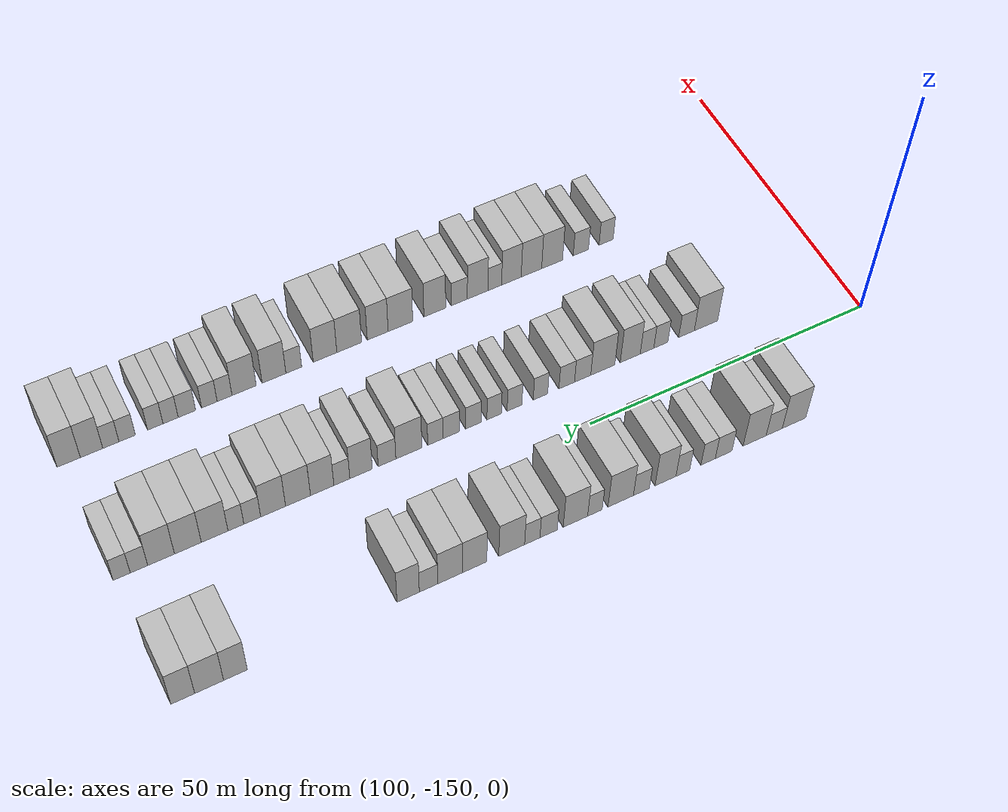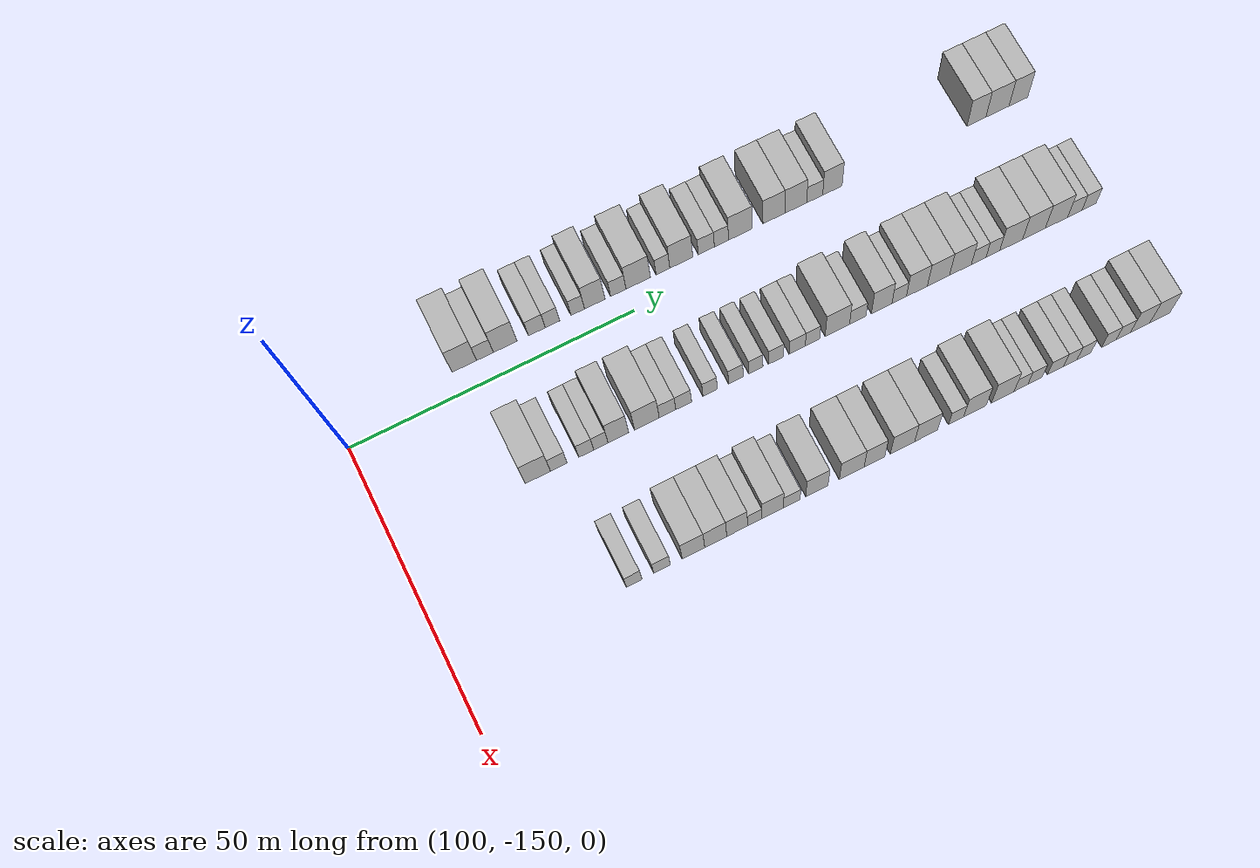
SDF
<sdf version="1.6">
 <world name="default">
  <model name="building_629">
   <static>1</static>
   <pose>91.0000 -128.2528 0 0.000000 0.000000 0.000000</pose>
   <link name="link">
    <pose>0 0 4.50 0 0 0</pose>
    <collision name="collision"><geometry><box><size>10.0000 4.3048 9.0000</size></box></geometry></collision>
    <visual name="visual">
     <cast_shadows>0</cast_shadows>
     <geometry><box><size>10.0000 4.3048 9.0000</size></box></geometry>
     <material>
      <script>
       <uri>model://HANNAS_wall/materials/scripts</uri>
       <uri>model://HANNAS_wall/materials/textures</uri>
       <name>vrc/HANNAS_wall</name>
      </script>
     </material>
    </visual>
   </link>
  </model>
  <model name="building_630">
   <static>1</static>
   <pose>91.0000 -124.6342 0 0.000000 0.000000 0.000000</pose>
   <link name="link">
    <pose>0 0 3.00 0 0 0</pose>
    <collision name="collision"><geometry><box><size>10.0000 2.9324 6.0000</size></box></geometry></collision>
    <visual name="visual">
     <cast_shadows>0</cast_shadows>
     <geometry><box><size>10.0000 2.9324 6.0000</size></box></geometry>
     <material>
      <script>
       <uri>model://HANNAS_wall/materials/scripts</uri>
       <uri>model://HANNAS_wall/materials/textures</uri>
       <name>vrc/HANNAS_wall</name>
      </script>
     </material>
    </visual>
   </link>
  </model>
  <model name="building_631">
   <static>1</static>
   <pose>91.0000 -121.0870 0 0.000000 0.000000 0.000000</pose>
   <link name="link">
    <pose>0 0 4.50 0 0 0</pose>
    <collision name="collision"><geometry><box><size>10.0000 4.1621 9.0000</size></box></geometry></collision>
    <visual name="visual">
     <cast_shadows>0</cast_shadows>
     <geometry><box><size>10.0000 4.1621 9.0000</size></box></geometry>
     <material>
      <script>
       <uri>model://HANNAS_wall/materials/scripts</uri>
       <uri>model://HANNAS_wall/materials/textures</uri>
       <name>vrc/HANNAS_wall</name>
      </script>
     </material>
    </visual>
   </link>
  </model>
  <model name="building_632">
   <static>1</static>
   <pose>91.0000 -115.5099 0 0.000000 0.000000 0.000000</pose>
   <link name="link">
    <pose>0 0 3.00 0 0 0</pose>
    <collision name="collision"><geometry><box><size>10.0000 2.9921 6.0000</size></box></geometry></collision>
    <visual name="visual">
     <cast_shadows>0</cast_shadows>
     <geometry><box><size>10.0000 2.9921 6.0000</size></box></geometry>
     <material>
      <script>
       <uri>model://HANNAS_wall/materials/scripts</uri>
       <uri>model://HANNAS_wall/materials/textures</uri>
       <name>vrc/HANNAS_wall</name>
      </script>
     </material>
    </visual>
   </link>
  </model>
  <model name="building_633">
   <static>1</static>
   <pose>91.0000 -112.7357 0 0.000000 0.000000 0.000000</pose>
   <link name="link">
    <pose>0 0 3.00 0 0 0</pose>
    <collision name="collision"><geometry><box><size>10.0000 2.5564 6.0000</size></box></geometry></collision>
    <visual name="visual">
     <cast_shadows>0</cast_shadows>
     <geometry><box><size>10.0000 2.5564 6.0000</size></box></geometry>
     <material>
      <script>
       <uri>model://HANNAS_wall/materials/scripts</uri>
       <uri>model://HANNAS_wall/materials/textures</uri>
       <name>vrc/HANNAS_wall</name>
      </script>
     </material>
    </visual>
   </link>
  </model>
  <model name="building_634">
   <static>1</static>
   <pose>91.0000 -108.2449 0 0.000000 0.000000 0.000000</pose>
   <link name="link">
    <pose>0 0 3.00 0 0 0</pose>
    <collision name="collision"><geometry><box><size>10.0000 2.4250 6.0000</size></box></geometry></collision>
    <visual name="visual">
     <cast_shadows>0</cast_shadows>
     <geometry><box><size>10.0000 2.4250 6.0000</size></box></geometry>
     <material>
      <script>
       <uri>model://HANNAS_wall/materials/scripts</uri>
       <uri>model://HANNAS_wall/materials/textures</uri>
       <name>vrc/HANNAS_wall</name>
      </script>
     </material>
    </visual>
   </link>
  </model>
  <model name="building_635">
   <static>1</static>
   <pose>91.0000 -105.1989 0 0.000000 0.000000 0.000000</pose>
   <link name="link">
    <pose>0 0 4.50 0 0 0</pose>
    <collision name="collision"><geometry><box><size>10.0000 3.6670 9.0000</size></box></geometry></collision>
    <visual name="visual">
     <cast_shadows>0</cast_shadows>
     <geometry><box><size>10.0000 3.6670 9.0000</size></box></geometry>
     <material>
      <script>
       <uri>model://HANNAS_wall/materials/scripts</uri>
       <uri>model://HANNAS_wall/materials/textures</uri>
       <name>vrc/HANNAS_wall</name>
      </script>
     </material>
    </visual>
   </link>
  </model>
  <model name="building_636">
   <static>1</static>
   <pose>91.0000 -100.9772 0 0.000000 0.000000 0.000000</pose>
   <link name="link">
    <pose>0 0 3.00 0 0 0</pose>
    <collision name="collision"><geometry><box><size>10.0000 2.7763 6.0000</size></box></geometry></collision>
    <visual name="visual">
     <cast_shadows>0</cast_shadows>
     <geometry><box><size>10.0000 2.7763 6.0000</size></box></geometry>
     <material>
      <script>
       <uri>model://HANNAS_wall/materials/scripts</uri>
       <uri>model://HANNAS_wall/materials/textures</uri>
       <name>vrc/HANNAS_wall</name>
      </script>
     </material>
    </visual>
   </link>
  </model>
  <model name="building_637">
   <static>1</static>
   <pose>91.0000 -97.3853 0 0.000000 0.000000 0.000000</pose>
   <link name="link">
    <pose>0 0 4.50 0 0 0</pose>
    <collision name="collision"><geometry><box><size>10.0000 4.4076 9.0000</size></box></geometry></collision>
    <visual name="visual">
     <cast_shadows>0</cast_shadows>
     <geometry><box><size>10.0000 4.4076 9.0000</size></box></geometry>
     <material>
      <script>
       <uri>model://HANNAS_wall/materials/scripts</uri>
       <uri>model://HANNAS_wall/materials/textures</uri>
       <name>vrc/HANNAS_wall</name>
      </script>
     </material>
    </visual>
   </link>
  </model>
  <model name="building_638">
   <static>1</static>
   <pose>91.0000 -92.9346 0 0.000000 0.000000 0.000000</pose>
   <link name="link">
    <pose>0 0 3.00 0 0 0</pose>
    <collision name="collision"><geometry><box><size>10.0000 2.4937 6.0000</size></box></geometry></collision>
    <visual name="visual">
     <cast_shadows>0</cast_shadows>
     <geometry><box><size>10.0000 2.4937 6.0000</size></box></geometry>
     <material>
      <script>
       <uri>model://HANNAS_wall/materials/scripts</uri>
       <uri>model://HANNAS_wall/materials/textures</uri>
       <name>vrc/HANNAS_wall</name>
      </script>
     </material>
    </visual>
   </link>
  </model>
  <model name="building_639">
   <static>1</static>
   <pose>91.0000 -89.5985 0 0.000000 0.000000 0.000000</pose>
   <link name="link">
    <pose>0 0 4.50 0 0 0</pose>
    <collision name="collision"><geometry><box><size>10.0000 4.1785 9.0000</size></box></geometry></collision>
    <visual name="visual">
     <cast_shadows>0</cast_shadows>
     <geometry><box><size>10.0000 4.1785 9.0000</size></box></geometry>
     <material>
      <script>
       <uri>model://HANNAS_wall/materials/scripts</uri>
       <uri>model://HANNAS_wall/materials/textures</uri>
       <name>vrc/HANNAS_wall</name>
      </script>
     </material>
    </visual>
   </link>
  </model>
  <model name="building_640">
   <static>1</static>
   <pose>91.0000 -85.0421 0 0.000000 0.000000 0.000000</pose>
   <link name="link">
    <pose>0 0 3.00 0 0 0</pose>
    <collision name="collision"><geometry><box><size>10.0000 2.9344 6.0000</size></box></geometry></collision>
    <visual name="visual">
     <cast_shadows>0</cast_shadows>
     <geometry><box><size>10.0000 2.9344 6.0000</size></box></geometry>
     <material>
      <script>
       <uri>model://HANNAS_wall/materials/scripts</uri>
       <uri>model://HANNAS_wall/materials/textures</uri>
       <name>vrc/HANNAS_wall</name>
      </script>
     </material>
    </visual>
   </link>
  </model>
  <model name="building_641">
   <static>1</static>
   <pose>91.0000 -82.2795 0 0.000000 0.000000 0.000000</pose>
   <link name="link">
    <pose>0 0 3.00 0 0 0</pose>
    <collision name="collision"><geometry><box><size>10.0000 2.5909 6.0000</size></box></geometry></collision>
    <visual name="visual">
     <cast_shadows>0</cast_shadows>
     <geometry><box><size>10.0000 2.5909 6.0000</size></box></geometry>
     <material>
      <script>
       <uri>model://HANNAS_wall/materials/scripts</uri>
       <uri>model://HANNAS_wall/materials/textures</uri>
       <name>vrc/HANNAS_wall</name>
      </script>
     </material>
    </visual>
   </link>
  </model>
  <model name="building_642">
   <static>1</static>
   <pose>91.0000 -78.8222 0 0.000000 0.000000 0.000000</pose>
   <link name="link">
    <pose>0 0 4.50 0 0 0</pose>
    <collision name="collision"><geometry><box><size>10.0000 4.3237 9.0000</size></box></geometry></collision>
    <visual name="visual">
     <cast_shadows>0</cast_shadows>
     <geometry><box><size>10.0000 4.3237 9.0000</size></box></geometry>
     <material>
      <script>
       <uri>model://HANNAS_wall/materials/scripts</uri>
       <uri>model://HANNAS_wall/materials/textures</uri>
       <name>vrc/HANNAS_wall</name>
      </script>
     </material>
    </visual>
   </link>
  </model>
  <model name="building_643">
   <static>1</static>
   <pose>91.0000 -72.6455 0 0.000000 0.000000 0.000000</pose>
   <link name="link">
    <pose>0 0 4.50 0 0 0</pose>
    <collision name="collision"><geometry><box><size>10.0000 4.0297 9.0000</size></box></geometry></collision>
    <visual name="visual">
     <cast_shadows>0</cast_shadows>
     <geometry><box><size>10.0000 4.0297 9.0000</size></box></geometry>
     <material>
      <script>
       <uri>model://HANNAS_wall/materials/scripts</uri>
       <uri>model://HANNAS_wall/materials/textures</uri>
       <name>vrc/HANNAS_wall</name>
      </script>
     </material>
    </visual>
   </link>
  </model>
  <model name="building_644">
   <static>1</static>
   <pose>91.0000 -68.5964 0 0.000000 0.000000 0.000000</pose>
   <link name="link">
    <pose>0 0 4.50 0 0 0</pose>
    <collision name="collision"><geometry><box><size>10.0000 4.0685 9.0000</size></box></geometry></collision>
    <visual name="visual">
     <cast_shadows>0</cast_shadows>
     <geometry><box><size>10.0000 4.0685 9.0000</size></box></geometry>
     <material>
      <script>
       <uri>model://HANNAS_wall/materials/scripts</uri>
       <uri>model://HANNAS_wall/materials/textures</uri>
       <name>vrc/HANNAS_wall</name>
      </script>
     </material>
    </visual>
   </link>
  </model>
  <model name="building_645">
   <static>1</static>
   <pose>91.0000 -65.0683 0 0.000000 0.000000 0.000000</pose>
   <link name="link">
    <pose>0 0 3.00 0 0 0</pose>
    <collision name="collision"><geometry><box><size>10.0000 2.9877 6.0000</size></box></geometry></collision>
    <visual name="visual">
     <cast_shadows>0</cast_shadows>
     <geometry><box><size>10.0000 2.9877 6.0000</size></box></geometry>
     <material>
      <script>
       <uri>model://HANNAS_wall/materials/scripts</uri>
       <uri>model://HANNAS_wall/materials/textures</uri>
       <name>vrc/HANNAS_wall</name>
      </script>
     </material>
    </visual>
   </link>
  </model>
  <model name="building_646">
   <static>1</static>
   <pose>91.0000 -61.7629 0 0.000000 0.000000 0.000000</pose>
   <link name="link">
    <pose>0 0 4.50 0 0 0</pose>
    <collision name="collision"><geometry><box><size>10.0000 3.6233 9.0000</size></box></geometry></collision>
    <visual name="visual">
     <cast_shadows>0</cast_shadows>
     <geometry><box><size>10.0000 3.6233 9.0000</size></box></geometry>
     <material>
      <script>
       <uri>model://HANNAS_wall/materials/scripts</uri>
       <uri>model://HANNAS_wall/materials/textures</uri>
       <name>vrc/HANNAS_wall</name>
      </script>
     </material>
    </visual>
   </link>
  </model>
  <model name="building_647">
   <static>1</static>
   <pose>91.0000 -34.4784 0 0.000000 0.000000 0.000000</pose>
   <link name="link">
    <pose>0 0 4.50 0 0 0</pose>
    <collision name="collision"><geometry><box><size>10.0000 3.6485 9.0000</size></box></geometry></collision>
    <visual name="visual">
     <cast_shadows>0</cast_shadows>
     <geometry><box><size>10.0000 3.6485 9.0000</size></box></geometry>
     <material>
      <script>
       <uri>model://HANNAS_wall/materials/scripts</uri>
       <uri>model://HANNAS_wall/materials/textures</uri>
       <name>vrc/HANNAS_wall</name>
      </script>
     </material>
    </visual>
   </link>
  </model>
  <model name="building_648">
   <static>1</static>
   <pose>91.0000 -30.4407 0 0.000000 0.000000 0.000000</pose>
   <link name="link">
    <pose>0 0 4.50 0 0 0</pose>
    <collision name="collision"><geometry><box><size>10.0000 4.4270 9.0000</size></box></geometry></collision>
    <visual name="visual">
     <cast_shadows>0</cast_shadows>
     <geometry><box><size>10.0000 4.4270 9.0000</size></box></geometry>
     <material>
      <script>
       <uri>model://HANNAS_wall/materials/scripts</uri>
       <uri>model://HANNAS_wall/materials/textures</uri>
       <name>vrc/HANNAS_wall</name>
      </script>
     </material>
    </visual>
   </link>
  </model>
  <model name="building_649">
   <static>1</static>
   <pose>91.0000 -26.4110 0 0.000000 0.000000 0.000000</pose>
   <link name="link">
    <pose>0 0 4.50 0 0 0</pose>
    <collision name="collision"><geometry><box><size>10.0000 3.6324 9.0000</size></box></geometry></collision>
    <visual name="visual">
     <cast_shadows>0</cast_shadows>
     <geometry><box><size>10.0000 3.6324 9.0000</size></box></geometry>
     <material>
      <script>
       <uri>model://HANNAS_wall/materials/scripts</uri>
       <uri>model://HANNAS_wall/materials/textures</uri>
       <name>vrc/HANNAS_wall</name>
      </script>
     </material>
    </visual>
   </link>
  </model>
  <model name="building_813">
   <static>1</static>
   <pose>113.0000 -125.6401 0 0.000000 0.000000 0.000000</pose>
   <link name="link">
    <pose>0 0 4.50 0 0 0</pose>
    <collision name="collision"><geometry><box><size>10.0000 4.3504 9.0000</size></box></geometry></collision>
    <visual name="visual">
     <cast_shadows>0</cast_shadows>
     <geometry><box><size>10.0000 4.3504 9.0000</size></box></geometry>
     <material>
      <script>
       <uri>model://HANNAS_wall/materials/scripts</uri>
       <uri>model://HANNAS_wall/materials/textures</uri>
       <name>vrc/HANNAS_wall</name>
      </script>
     </material>
    </visual>
   </link>
  </model>
  <model name="building_814">
   <static>1</static>
   <pose>113.0000 -122.0150 0 0.000000 0.000000 0.000000</pose>
   <link name="link">
    <pose>0 0 3.00 0 0 0</pose>
    <collision name="collision"><geometry><box><size>10.0000 2.8998 6.0000</size></box></geometry></collision>
    <visual name="visual">
     <cast_shadows>0</cast_shadows>
     <geometry><box><size>10.0000 2.8998 6.0000</size></box></geometry>
     <material>
      <script>
       <uri>model://HANNAS_wall/materials/scripts</uri>
       <uri>model://HANNAS_wall/materials/textures</uri>
       <name>vrc/HANNAS_wall</name>
      </script>
     </material>
    </visual>
   </link>
  </model>
  <model name="building_815">
   <static>1</static>
   <pose>113.0000 -117.2674 0 0.000000 0.000000 0.000000</pose>
   <link name="link">
    <pose>0 0 3.00 0 0 0</pose>
    <collision name="collision"><geometry><box><size>10.0000 2.5953 6.0000</size></box></geometry></collision>
    <visual name="visual">
     <cast_shadows>0</cast_shadows>
     <geometry><box><size>10.0000 2.5953 6.0000</size></box></geometry>
     <material>
      <script>
       <uri>model://HANNAS_wall/materials/scripts</uri>
       <uri>model://HANNAS_wall/materials/textures</uri>
       <name>vrc/HANNAS_wall</name>
      </script>
     </material>
    </visual>
   </link>
  </model>
  <model name="building_816">
   <static>1</static>
   <pose>113.0000 -114.7191 0 0.000000 0.000000 0.000000</pose>
   <link name="link">
    <pose>0 0 3.00 0 0 0</pose>
    <collision name="collision"><geometry><box><size>10.0000 2.5014 6.0000</size></box></geometry></collision>
    <visual name="visual">
     <cast_shadows>0</cast_shadows>
     <geometry><box><size>10.0000 2.5014 6.0000</size></box></geometry>
     <material>
      <script>
       <uri>model://HANNAS_wall/materials/scripts</uri>
       <uri>model://HANNAS_wall/materials/textures</uri>
       <name>vrc/HANNAS_wall</name>
      </script>
     </material>
    </visual>
   </link>
  </model>
  <model name="building_817">
   <static>1</static>
   <pose>113.0000 -111.6528 0 0.000000 0.000000 0.000000</pose>
   <link name="link">
    <pose>0 0 4.50 0 0 0</pose>
    <collision name="collision"><geometry><box><size>10.0000 3.6313 9.0000</size></box></geometry></collision>
    <visual name="visual">
     <cast_shadows>0</cast_shadows>
     <geometry><box><size>10.0000 3.6313 9.0000</size></box></geometry>
     <material>
      <script>
       <uri>model://HANNAS_wall/materials/scripts</uri>
       <uri>model://HANNAS_wall/materials/textures</uri>
       <name>vrc/HANNAS_wall</name>
      </script>
     </material>
    </visual>
   </link>
  </model>
  <model name="building_818">
   <static>1</static>
   <pose>113.0000 -106.6635 0 0.000000 0.000000 0.000000</pose>
   <link name="link">
    <pose>0 0 4.50 0 0 0</pose>
    <collision name="collision"><geometry><box><size>10.0000 4.3473 9.0000</size></box></geometry></collision>
    <visual name="visual">
     <cast_shadows>0</cast_shadows>
     <geometry><box><size>10.0000 4.3473 9.0000</size></box></geometry>
     <material>
      <script>
       <uri>model://HANNAS_wall/materials/scripts</uri>
       <uri>model://HANNAS_wall/materials/textures</uri>
       <name>vrc/HANNAS_wall</name>
      </script>
     </material>
    </visual>
   </link>
  </model>
  <model name="building_819">
   <static>1</static>
   <pose>113.0000 -103.0299 0 0.000000 0.000000 0.000000</pose>
   <link name="link">
    <pose>0 0 3.00 0 0 0</pose>
    <collision name="collision"><geometry><box><size>10.0000 2.9199 6.0000</size></box></geometry></collision>
    <visual name="visual">
     <cast_shadows>0</cast_shadows>
     <geometry><box><size>10.0000 2.9199 6.0000</size></box></geometry>
     <material>
      <script>
       <uri>model://HANNAS_wall/materials/scripts</uri>
       <uri>model://HANNAS_wall/materials/textures</uri>
       <name>vrc/HANNAS_wall</name>
      </script>
     </material>
    </visual>
   </link>
  </model>
  <model name="building_820">
   <static>1</static>
   <pose>113.0000 -100.1731 0 0.000000 0.000000 0.000000</pose>
   <link name="link">
    <pose>0 0 3.00 0 0 0</pose>
    <collision name="collision"><geometry><box><size>10.0000 2.7935 6.0000</size></box></geometry></collision>
    <visual name="visual">
     <cast_shadows>0</cast_shadows>
     <geometry><box><size>10.0000 2.7935 6.0000</size></box></geometry>
     <material>
      <script>
       <uri>model://HANNAS_wall/materials/scripts</uri>
       <uri>model://HANNAS_wall/materials/textures</uri>
       <name>vrc/HANNAS_wall</name>
      </script>
     </material>
    </visual>
   </link>
  </model>
  <model name="building_821">
   <static>1</static>
   <pose>113.0000 -95.4942 0 0.000000 0.000000 0.000000</pose>
   <link name="link">
    <pose>0 0 3.00 0 0 0</pose>
    <collision name="collision"><geometry><box><size>10.0000 2.5645 6.0000</size></box></geometry></collision>
    <visual name="visual">
     <cast_shadows>0</cast_shadows>
     <geometry><box><size>10.0000 2.5645 6.0000</size></box></geometry>
     <material>
      <script>
       <uri>model://HANNAS_wall/materials/scripts</uri>
       <uri>model://HANNAS_wall/materials/textures</uri>
       <name>vrc/HANNAS_wall</name>
      </script>
     </material>
    </visual>
   </link>
  </model>
  <model name="building_822">
   <static>1</static>
   <pose>113.0000 -90.9071 0 0.000000 0.000000 0.000000</pose>
   <link name="link">
    <pose>0 0 3.00 0 0 0</pose>
    <collision name="collision"><geometry><box><size>10.0000 2.6097 6.0000</size></box></geometry></collision>
    <visual name="visual">
     <cast_shadows>0</cast_shadows>
     <geometry><box><size>10.0000 2.6097 6.0000</size></box></geometry>
     <material>
      <script>
       <uri>model://HANNAS_wall/materials/scripts</uri>
       <uri>model://HANNAS_wall/materials/textures</uri>
       <name>vrc/HANNAS_wall</name>
      </script>
     </material>
    </visual>
   </link>
  </model>
  <model name="building_823">
   <static>1</static>
   <pose>113.0000 -87.3307 0 0.000000 0.000000 0.000000</pose>
   <link name="link">
    <pose>0 0 3.00 0 0 0</pose>
    <collision name="collision"><geometry><box><size>10.0000 2.5431 6.0000</size></box></geometry></collision>
    <visual name="visual">
     <cast_shadows>0</cast_shadows>
     <geometry><box><size>10.0000 2.5431 6.0000</size></box></geometry>
     <material>
      <script>
       <uri>model://HANNAS_wall/materials/scripts</uri>
       <uri>model://HANNAS_wall/materials/textures</uri>
       <name>vrc/HANNAS_wall</name>
      </script>
     </material>
    </visual>
   </link>
  </model>
  <model name="building_824">
   <static>1</static>
   <pose>113.0000 -83.7020 0 0.000000 0.000000 0.000000</pose>
   <link name="link">
    <pose>0 0 3.00 0 0 0</pose>
    <collision name="collision"><geometry><box><size>10.0000 2.7142 6.0000</size></box></geometry></collision>
    <visual name="visual">
     <cast_shadows>0</cast_shadows>
     <geometry><box><size>10.0000 2.7142 6.0000</size></box></geometry>
     <material>
      <script>
       <uri>model://HANNAS_wall/materials/scripts</uri>
       <uri>model://HANNAS_wall/materials/textures</uri>
       <name>vrc/HANNAS_wall</name>
      </script>
     </material>
    </visual>
   </link>
  </model>
  <model name="building_825">
   <static>1</static>
   <pose>113.0000 -79.8865 0 0.000000 0.000000 0.000000</pose>
   <link name="link">
    <pose>0 0 3.00 0 0 0</pose>
    <collision name="collision"><geometry><box><size>10.0000 2.9169 6.0000</size></box></geometry></collision>
    <visual name="visual">
     <cast_shadows>0</cast_shadows>
     <geometry><box><size>10.0000 2.9169 6.0000</size></box></geometry>
     <material>
      <script>
       <uri>model://HANNAS_wall/materials/scripts</uri>
       <uri>model://HANNAS_wall/materials/textures</uri>
       <name>vrc/HANNAS_wall</name>
      </script>
     </material>
    </visual>
   </link>
  </model>
  <model name="building_826">
   <static>1</static>
   <pose>113.0000 -77.1301 0 0.000000 0.000000 0.000000</pose>
   <link name="link">
    <pose>0 0 3.00 0 0 0</pose>
    <collision name="collision"><geometry><box><size>10.0000 2.5959 6.0000</size></box></geometry></collision>
    <visual name="visual">
     <cast_shadows>0</cast_shadows>
     <geometry><box><size>10.0000 2.5959 6.0000</size></box></geometry>
     <material>
      <script>
       <uri>model://HANNAS_wall/materials/scripts</uri>
       <uri>model://HANNAS_wall/materials/textures</uri>
       <name>vrc/HANNAS_wall</name>
      </script>
     </material>
    </visual>
   </link>
  </model>
  <model name="building_827">
   <static>1</static>
   <pose>113.0000 -72.6167 0 0.000000 0.000000 0.000000</pose>
   <link name="link">
    <pose>0 0 4.50 0 0 0</pose>
    <collision name="collision"><geometry><box><size>10.0000 4.4309 9.0000</size></box></geometry></collision>
    <visual name="visual">
     <cast_shadows>0</cast_shadows>
     <geometry><box><size>10.0000 4.4309 9.0000</size></box></geometry>
     <material>
      <script>
       <uri>model://HANNAS_wall/materials/scripts</uri>
       <uri>model://HANNAS_wall/materials/textures</uri>
       <name>vrc/HANNAS_wall</name>
      </script>
     </material>
    </visual>
   </link>
  </model>
  <model name="building_828">
   <static>1</static>
   <pose>113.0000 -68.9029 0 0.000000 0.000000 0.000000</pose>
   <link name="link">
    <pose>0 0 3.00 0 0 0</pose>
    <collision name="collision"><geometry><box><size>10.0000 2.9967 6.0000</size></box></geometry></collision>
    <visual name="visual">
     <cast_shadows>0</cast_shadows>
     <geometry><box><size>10.0000 2.9967 6.0000</size></box></geometry>
     <material>
      <script>
       <uri>model://HANNAS_wall/materials/scripts</uri>
       <uri>model://HANNAS_wall/materials/textures</uri>
       <name>vrc/HANNAS_wall</name>
      </script>
     </material>
    </visual>
   </link>
  </model>
  <model name="building_829">
   <static>1</static>
   <pose>113.0000 -64.5212 0 0.000000 0.000000 0.000000</pose>
   <link name="link">
    <pose>0 0 4.50 0 0 0</pose>
    <collision name="collision"><geometry><box><size>10.0000 3.7666 9.0000</size></box></geometry></collision>
    <visual name="visual">
     <cast_shadows>0</cast_shadows>
     <geometry><box><size>10.0000 3.7666 9.0000</size></box></geometry>
     <material>
      <script>
       <uri>model://HANNAS_wall/materials/scripts</uri>
       <uri>model://HANNAS_wall/materials/textures</uri>
       <name>vrc/HANNAS_wall</name>
      </script>
     </material>
    </visual>
   </link>
  </model>
  <model name="building_830">
   <static>1</static>
   <pose>113.0000 -61.3076 0 0.000000 0.000000 0.000000</pose>
   <link name="link">
    <pose>0 0 3.00 0 0 0</pose>
    <collision name="collision"><geometry><box><size>10.0000 2.6607 6.0000</size></box></geometry></collision>
    <visual name="visual">
     <cast_shadows>0</cast_shadows>
     <geometry><box><size>10.0000 2.6607 6.0000</size></box></geometry>
     <material>
      <script>
       <uri>model://HANNAS_wall/materials/scripts</uri>
       <uri>model://HANNAS_wall/materials/textures</uri>
       <name>vrc/HANNAS_wall</name>
      </script>
     </material>
    </visual>
   </link>
  </model>
  <model name="building_831">
   <static>1</static>
   <pose>113.0000 -58.0363 0 0.000000 0.000000 0.000000</pose>
   <link name="link">
    <pose>0 0 4.50 0 0 0</pose>
    <collision name="collision"><geometry><box><size>10.0000 3.8820 9.0000</size></box></geometry></collision>
    <visual name="visual">
     <cast_shadows>0</cast_shadows>
     <geometry><box><size>10.0000 3.8820 9.0000</size></box></geometry>
     <material>
      <script>
       <uri>model://HANNAS_wall/materials/scripts</uri>
       <uri>model://HANNAS_wall/materials/textures</uri>
       <name>vrc/HANNAS_wall</name>
      </script>
     </material>
    </visual>
   </link>
  </model>
  <model name="building_832">
   <static>1</static>
   <pose>113.0000 -54.0387 0 0.000000 0.000000 0.000000</pose>
   <link name="link">
    <pose>0 0 4.50 0 0 0</pose>
    <collision name="collision"><geometry><box><size>10.0000 4.1131 9.0000</size></box></geometry></collision>
    <visual name="visual">
     <cast_shadows>0</cast_shadows>
     <geometry><box><size>10.0000 4.1131 9.0000</size></box></geometry>
     <material>
      <script>
       <uri>model://HANNAS_wall/materials/scripts</uri>
       <uri>model://HANNAS_wall/materials/textures</uri>
       <name>vrc/HANNAS_wall</name>
      </script>
     </material>
    </visual>
   </link>
  </model>
  <model name="building_833">
   <static>1</static>
   <pose>113.0000 -49.9500 0 0.000000 0.000000 0.000000</pose>
   <link name="link">
    <pose>0 0 4.50 0 0 0</pose>
    <collision name="collision"><geometry><box><size>10.0000 4.0644 9.0000</size></box></geometry></collision>
    <visual name="visual">
     <cast_shadows>0</cast_shadows>
     <geometry><box><size>10.0000 4.0644 9.0000</size></box></geometry>
     <material>
      <script>
       <uri>model://HANNAS_wall/materials/scripts</uri>
       <uri>model://HANNAS_wall/materials/textures</uri>
       <name>vrc/HANNAS_wall</name>
      </script>
     </material>
    </visual>
   </link>
  </model>
  <model name="building_834">
   <static>1</static>
   <pose>113.0000 -46.5469 0 0.000000 0.000000 0.000000</pose>
   <link name="link">
    <pose>0 0 3.00 0 0 0</pose>
    <collision name="collision"><geometry><box><size>10.0000 2.7416 6.0000</size></box></geometry></collision>
    <visual name="visual">
     <cast_shadows>0</cast_shadows>
     <geometry><box><size>10.0000 2.7416 6.0000</size></box></geometry>
     <material>
      <script>
       <uri>model://HANNAS_wall/materials/scripts</uri>
       <uri>model://HANNAS_wall/materials/textures</uri>
       <name>vrc/HANNAS_wall</name>
      </script>
     </material>
    </visual>
   </link>
  </model>
  <model name="building_835">
   <static>1</static>
   <pose>113.0000 -43.8888 0 0.000000 0.000000 0.000000</pose>
   <link name="link">
    <pose>0 0 3.00 0 0 0</pose>
    <collision name="collision"><geometry><box><size>10.0000 2.5746 6.0000</size></box></geometry></collision>
    <visual name="visual">
     <cast_shadows>0</cast_shadows>
     <geometry><box><size>10.0000 2.5746 6.0000</size></box></geometry>
     <material>
      <script>
       <uri>model://HANNAS_wall/materials/scripts</uri>
       <uri>model://HANNAS_wall/materials/textures</uri>
       <name>vrc/HANNAS_wall</name>
      </script>
     </material>
    </visual>
   </link>
  </model>
  <model name="building_836">
   <static>1</static>
   <pose>113.0000 -40.4570 0 0.000000 0.000000 0.000000</pose>
   <link name="link">
    <pose>0 0 4.50 0 0 0</pose>
    <collision name="collision"><geometry><box><size>10.0000 4.2890 9.0000</size></box></geometry></collision>
    <visual name="visual">
     <cast_shadows>0</cast_shadows>
     <geometry><box><size>10.0000 4.2890 9.0000</size></box></geometry>
     <material>
      <script>
       <uri>model://HANNAS_wall/materials/scripts</uri>
       <uri>model://HANNAS_wall/materials/textures</uri>
       <name>vrc/HANNAS_wall</name>
      </script>
     </material>
    </visual>
   </link>
  </model>
  <model name="building_837">
   <static>1</static>
   <pose>113.0000 -36.1706 0 0.000000 0.000000 0.000000</pose>
   <link name="link">
    <pose>0 0 4.50 0 0 0</pose>
    <collision name="collision"><geometry><box><size>10.0000 4.2837 9.0000</size></box></geometry></collision>
    <visual name="visual">
     <cast_shadows>0</cast_shadows>
     <geometry><box><size>10.0000 4.2837 9.0000</size></box></geometry>
     <material>
      <script>
       <uri>model://HANNAS_wall/materials/scripts</uri>
       <uri>model://HANNAS_wall/materials/textures</uri>
       <name>vrc/HANNAS_wall</name>
      </script>
     </material>
    </visual>
   </link>
  </model>
  <model name="building_838">
   <static>1</static>
   <pose>113.0000 -31.9121 0 0.000000 0.000000 0.000000</pose>
   <link name="link">
    <pose>0 0 4.50 0 0 0</pose>
    <collision name="collision"><geometry><box><size>10.0000 4.2333 9.0000</size></box></geometry></collision>
    <visual name="visual">
     <cast_shadows>0</cast_shadows>
     <geometry><box><size>10.0000 4.2333 9.0000</size></box></geometry>
     <material>
      <script>
       <uri>model://HANNAS_wall/materials/scripts</uri>
       <uri>model://HANNAS_wall/materials/textures</uri>
       <name>vrc/HANNAS_wall</name>
      </script>
     </material>
    </visual>
   </link>
  </model>
  <model name="building_839">
   <static>1</static>
   <pose>113.0000 -28.4216 0 0.000000 0.000000 0.000000</pose>
   <link name="link">
    <pose>0 0 3.00 0 0 0</pose>
    <collision name="collision"><geometry><box><size>10.0000 2.7477 6.0000</size></box></geometry></collision>
    <visual name="visual">
     <cast_shadows>0</cast_shadows>
     <geometry><box><size>10.0000 2.7477 6.0000</size></box></geometry>
     <material>
      <script>
       <uri>model://HANNAS_wall/materials/scripts</uri>
       <uri>model://HANNAS_wall/materials/textures</uri>
       <name>vrc/HANNAS_wall</name>
      </script>
     </material>
    </visual>
   </link>
  </model>
  <model name="building_840">
   <static>1</static>
   <pose>113.0000 -25.7026 0 0.000000 0.000000 0.000000</pose>
   <link name="link">
    <pose>0 0 3.00 0 0 0</pose>
    <collision name="collision"><geometry><box><size>10.0000 2.6904 6.0000</size></box></geometry></collision>
    <visual name="visual">
     <cast_shadows>0</cast_shadows>
     <geometry><box><size>10.0000 2.6904 6.0000</size></box></geometry>
     <material>
      <script>
       <uri>model://HANNAS_wall/materials/scripts</uri>
       <uri>model://HANNAS_wall/materials/textures</uri>
       <name>vrc/HANNAS_wall</name>
      </script>
     </material>
    </visual>
   </link>
  </model>
  <model name="building_988">
   <static>1</static>
   <pose>135.0000 -119.6660 0 0.000000 0.000000 0.000000</pose>
   <link name="link">
    <pose>0 0 3.00 0 0 0</pose>
    <collision name="collision"><geometry><box><size>10.0000 2.6722 6.0000</size></box></geometry></collision>
    <visual name="visual">
     <cast_shadows>0</cast_shadows>
     <geometry><box><size>10.0000 2.6722 6.0000</size></box></geometry>
     <material>
      <script>
       <uri>model://HANNAS_wall/materials/scripts</uri>
       <uri>model://HANNAS_wall/materials/textures</uri>
       <name>vrc/HANNAS_wall</name>
      </script>
     </material>
    </visual>
   </link>
  </model>
  <model name="building_989">
   <static>1</static>
   <pose>135.0000 -114.8908 0 0.000000 0.000000 0.000000</pose>
   <link name="link">
    <pose>0 0 3.00 0 0 0</pose>
    <collision name="collision"><geometry><box><size>10.0000 2.8782 6.0000</size></box></geometry></collision>
    <visual name="visual">
     <cast_shadows>0</cast_shadows>
     <geometry><box><size>10.0000 2.8782 6.0000</size></box></geometry>
     <material>
      <script>
       <uri>model://HANNAS_wall/materials/scripts</uri>
       <uri>model://HANNAS_wall/materials/textures</uri>
       <name>vrc/HANNAS_wall</name>
      </script>
     </material>
    </visual>
   </link>
  </model>
  <model name="building_990">
   <static>1</static>
   <pose>135.0000 -109.5060 0 0.000000 0.000000 0.000000</pose>
   <link name="link">
    <pose>0 0 4.50 0 0 0</pose>
    <collision name="collision"><geometry><box><size>10.0000 3.8914 9.0000</size></box></geometry></collision>
    <visual name="visual">
     <cast_shadows>0</cast_shadows>
     <geometry><box><size>10.0000 3.8914 9.0000</size></box></geometry>
     <material>
      <script>
       <uri>model://HANNAS_wall/materials/scripts</uri>
       <uri>model://HANNAS_wall/materials/textures</uri>
       <name>vrc/HANNAS_wall</name>
      </script>
     </material>
    </visual>
   </link>
  </model>
  <model name="building_991">
   <static>1</static>
   <pose>135.0000 -105.6573 0 0.000000 0.000000 0.000000</pose>
   <link name="link">
    <pose>0 0 4.50 0 0 0</pose>
    <collision name="collision"><geometry><box><size>10.0000 3.8059 9.0000</size></box></geometry></collision>
    <visual name="visual">
     <cast_shadows>0</cast_shadows>
     <geometry><box><size>10.0000 3.8059 9.0000</size></box></geometry>
     <material>
      <script>
       <uri>model://HANNAS_wall/materials/scripts</uri>
       <uri>model://HANNAS_wall/materials/textures</uri>
       <name>vrc/HANNAS_wall</name>
      </script>
     </material>
    </visual>
   </link>
  </model>
  <model name="building_992">
   <static>1</static>
   <pose>135.0000 -101.9471 0 0.000000 0.000000 0.000000</pose>
   <link name="link">
    <pose>0 0 4.50 0 0 0</pose>
    <collision name="collision"><geometry><box><size>10.0000 3.6146 9.0000</size></box></geometry></collision>
    <visual name="visual">
     <cast_shadows>0</cast_shadows>
     <geometry><box><size>10.0000 3.6146 9.0000</size></box></geometry>
     <material>
      <script>
       <uri>model://HANNAS_wall/materials/scripts</uri>
       <uri>model://HANNAS_wall/materials/textures</uri>
       <name>vrc/HANNAS_wall</name>
      </script>
     </material>
    </visual>
   </link>
  </model>
  <model name="building_993">
   <static>1</static>
   <pose>135.0000 -98.8801 0 0.000000 0.000000 0.000000</pose>
   <link name="link">
    <pose>0 0 3.00 0 0 0</pose>
    <collision name="collision"><geometry><box><size>10.0000 2.5192 6.0000</size></box></geometry></collision>
    <visual name="visual">
     <cast_shadows>0</cast_shadows>
     <geometry><box><size>10.0000 2.5192 6.0000</size></box></geometry>
     <material>
      <script>
       <uri>model://HANNAS_wall/materials/scripts</uri>
       <uri>model://HANNAS_wall/materials/textures</uri>
       <name>vrc/HANNAS_wall</name>
      </script>
     </material>
    </visual>
   </link>
  </model>
  <model name="building_994">
   <static>1</static>
   <pose>135.0000 -95.7471 0 0.000000 0.000000 0.000000</pose>
   <link name="link">
    <pose>0 0 4.50 0 0 0</pose>
    <collision name="collision"><geometry><box><size>10.0000 3.7468 9.0000</size></box></geometry></collision>
    <visual name="visual">
     <cast_shadows>0</cast_shadows>
     <geometry><box><size>10.0000 3.7468 9.0000</size></box></geometry>
     <material>
      <script>
       <uri>model://HANNAS_wall/materials/scripts</uri>
       <uri>model://HANNAS_wall/materials/textures</uri>
       <name>vrc/HANNAS_wall</name>
      </script>
     </material>
    </visual>
   </link>
  </model>
  <model name="building_995">
   <static>1</static>
   <pose>135.0000 -92.4136 0 0.000000 0.000000 0.000000</pose>
   <link name="link">
    <pose>0 0 3.00 0 0 0</pose>
    <collision name="collision"><geometry><box><size>10.0000 2.9201 6.0000</size></box></geometry></collision>
    <visual name="visual">
     <cast_shadows>0</cast_shadows>
     <geometry><box><size>10.0000 2.9201 6.0000</size></box></geometry>
     <material>
      <script>
       <uri>model://HANNAS_wall/materials/scripts</uri>
       <uri>model://HANNAS_wall/materials/textures</uri>
       <name>vrc/HANNAS_wall</name>
      </script>
     </material>
    </visual>
   </link>
  </model>
  <model name="building_996">
   <static>1</static>
   <pose>135.0000 -87.9911 0 0.000000 0.000000 0.000000</pose>
   <link name="link">
    <pose>0 0 4.50 0 0 0</pose>
    <collision name="collision"><geometry><box><size>10.0000 3.9250 9.0000</size></box></geometry></collision>
    <visual name="visual">
     <cast_shadows>0</cast_shadows>
     <geometry><box><size>10.0000 3.9250 9.0000</size></box></geometry>
     <material>
      <script>
       <uri>model://HANNAS_wall/materials/scripts</uri>
       <uri>model://HANNAS_wall/materials/textures</uri>
       <name>vrc/HANNAS_wall</name>
      </script>
     </material>
    </visual>
   </link>
  </model>
  <model name="building_997">
   <static>1</static>
   <pose>135.0000 -81.8385 0 0.000000 0.000000 0.000000</pose>
   <link name="link">
    <pose>0 0 4.50 0 0 0</pose>
    <collision name="collision"><geometry><box><size>10.0000 4.3801 9.0000</size></box></geometry></collision>
    <visual name="visual">
     <cast_shadows>0</cast_shadows>
     <geometry><box><size>10.0000 4.3801 9.0000</size></box></geometry>
     <material>
      <script>
       <uri>model://HANNAS_wall/materials/scripts</uri>
       <uri>model://HANNAS_wall/materials/textures</uri>
       <name>vrc/HANNAS_wall</name>
      </script>
     </material>
    </visual>
   </link>
  </model>
  <model name="building_998">
   <static>1</static>
   <pose>135.0000 -77.8035 0 0.000000 0.000000 0.000000</pose>
   <link name="link">
    <pose>0 0 4.50 0 0 0</pose>
    <collision name="collision"><geometry><box><size>10.0000 3.6899 9.0000</size></box></geometry></collision>
    <visual name="visual">
     <cast_shadows>0</cast_shadows>
     <geometry><box><size>10.0000 3.6899 9.0000</size></box></geometry>
     <material>
      <script>
       <uri>model://HANNAS_wall/materials/scripts</uri>
       <uri>model://HANNAS_wall/materials/textures</uri>
       <name>vrc/HANNAS_wall</name>
      </script>
     </material>
    </visual>
   </link>
  </model>
  <model name="building_999">
   <static>1</static>
   <pose>135.0000 -72.7841 0 0.000000 0.000000 0.000000</pose>
   <link name="link">
    <pose>0 0 4.50 0 0 0</pose>
    <collision name="collision"><geometry><box><size>10.0000 4.3489 9.0000</size></box></geometry></collision>
    <visual name="visual">
     <cast_shadows>0</cast_shadows>
     <geometry><box><size>10.0000 4.3489 9.0000</size></box></geometry>
     <material>
      <script>
       <uri>model://HANNAS_wall/materials/scripts</uri>
       <uri>model://HANNAS_wall/materials/textures</uri>
       <name>vrc/HANNAS_wall</name>
      </script>
     </material>
    </visual>
   </link>
  </model>
  <model name="building_1000">
   <static>1</static>
   <pose>135.0000 -68.5533 0 0.000000 0.000000 0.000000</pose>
   <link name="link">
    <pose>0 0 4.50 0 0 0</pose>
    <collision name="collision"><geometry><box><size>10.0000 4.1129 9.0000</size></box></geometry></collision>
    <visual name="visual">
     <cast_shadows>0</cast_shadows>
     <geometry><box><size>10.0000 4.1129 9.0000</size></box></geometry>
     <material>
      <script>
       <uri>model://HANNAS_wall/materials/scripts</uri>
       <uri>model://HANNAS_wall/materials/textures</uri>
       <name>vrc/HANNAS_wall</name>
      </script>
     </material>
    </visual>
   </link>
  </model>
  <model name="building_1001">
   <static>1</static>
   <pose>135.0000 -63.1391 0 0.000000 0.000000 0.000000</pose>
   <link name="link">
    <pose>0 0 3.00 0 0 0</pose>
    <collision name="collision"><geometry><box><size>10.0000 2.7155 6.0000</size></box></geometry></collision>
    <visual name="visual">
     <cast_shadows>0</cast_shadows>
     <geometry><box><size>10.0000 2.7155 6.0000</size></box></geometry>
     <material>
      <script>
       <uri>model://HANNAS_wall/materials/scripts</uri>
       <uri>model://HANNAS_wall/materials/textures</uri>
       <name>vrc/HANNAS_wall</name>
      </script>
     </material>
    </visual>
   </link>
  </model>
  <model name="building_1002">
   <static>1</static>
   <pose>135.0000 -59.7366 0 0.000000 0.000000 0.000000</pose>
   <link name="link">
    <pose>0 0 4.50 0 0 0</pose>
    <collision name="collision"><geometry><box><size>10.0000 4.0894 9.0000</size></box></geometry></collision>
    <visual name="visual">
     <cast_shadows>0</cast_shadows>
     <geometry><box><size>10.0000 4.0894 9.0000</size></box></geometry>
     <material>
      <script>
       <uri>model://HANNAS_wall/materials/scripts</uri>
       <uri>model://HANNAS_wall/materials/textures</uri>
       <name>vrc/HANNAS_wall</name>
      </script>
     </material>
    </visual>
   </link>
  </model>
  <model name="building_1003">
   <static>1</static>
   <pose>135.0000 -54.6317 0 0.000000 0.000000 0.000000</pose>
   <link name="link">
    <pose>0 0 4.50 0 0 0</pose>
    <collision name="collision"><geometry><box><size>10.0000 4.1206 9.0000</size></box></geometry></collision>
    <visual name="visual">
     <cast_shadows>0</cast_shadows>
     <geometry><box><size>10.0000 4.1206 9.0000</size></box></geometry>
     <material>
      <script>
       <uri>model://HANNAS_wall/materials/scripts</uri>
       <uri>model://HANNAS_wall/materials/textures</uri>
       <name>vrc/HANNAS_wall</name>
      </script>
     </material>
    </visual>
   </link>
  </model>
  <model name="building_1004">
   <static>1</static>
   <pose>135.0000 -51.3182 0 0.000000 0.000000 0.000000</pose>
   <link name="link">
    <pose>0 0 3.00 0 0 0</pose>
    <collision name="collision"><geometry><box><size>10.0000 2.5062 6.0000</size></box></geometry></collision>
    <visual name="visual">
     <cast_shadows>0</cast_shadows>
     <geometry><box><size>10.0000 2.5062 6.0000</size></box></geometry>
     <material>
      <script>
       <uri>model://HANNAS_wall/materials/scripts</uri>
       <uri>model://HANNAS_wall/materials/textures</uri>
       <name>vrc/HANNAS_wall</name>
      </script>
     </material>
    </visual>
   </link>
  </model>
  <model name="building_1005">
   <static>1</static>
   <pose>135.0000 -48.7541 0 0.000000 0.000000 0.000000</pose>
   <link name="link">
    <pose>0 0 3.00 0 0 0</pose>
    <collision name="collision"><geometry><box><size>10.0000 2.6221 6.0000</size></box></geometry></collision>
    <visual name="visual">
     <cast_shadows>0</cast_shadows>
     <geometry><box><size>10.0000 2.6221 6.0000</size></box></geometry>
     <material>
      <script>
       <uri>model://HANNAS_wall/materials/scripts</uri>
       <uri>model://HANNAS_wall/materials/textures</uri>
       <name>vrc/HANNAS_wall</name>
      </script>
     </material>
    </visual>
   </link>
  </model>
  <model name="building_1006">
   <static>1</static>
   <pose>135.0000 -44.9797 0 0.000000 0.000000 0.000000</pose>
   <link name="link">
    <pose>0 0 3.00 0 0 0</pose>
    <collision name="collision"><geometry><box><size>10.0000 2.9266 6.0000</size></box></geometry></collision>
    <visual name="visual">
     <cast_shadows>0</cast_shadows>
     <geometry><box><size>10.0000 2.9266 6.0000</size></box></geometry>
     <material>
      <script>
       <uri>model://HANNAS_wall/materials/scripts</uri>
       <uri>model://HANNAS_wall/materials/textures</uri>
       <name>vrc/HANNAS_wall</name>
      </script>
     </material>
    </visual>
   </link>
  </model>
  <model name="building_1007">
   <static>1</static>
   <pose>135.0000 -42.2497 0 0.000000 0.000000 0.000000</pose>
   <link name="link">
    <pose>0 0 3.00 0 0 0</pose>
    <collision name="collision"><geometry><box><size>10.0000 2.5335 6.0000</size></box></geometry></collision>
    <visual name="visual">
     <cast_shadows>0</cast_shadows>
     <geometry><box><size>10.0000 2.5335 6.0000</size></box></geometry>
     <material>
      <script>
       <uri>model://HANNAS_wall/materials/scripts</uri>
       <uri>model://HANNAS_wall/materials/textures</uri>
       <name>vrc/HANNAS_wall</name>
      </script>
     </material>
    </visual>
   </link>
  </model>
  <model name="building_1008">
   <static>1</static>
   <pose>135.0000 -39.7046 0 0.000000 0.000000 0.000000</pose>
   <link name="link">
    <pose>0 0 3.00 0 0 0</pose>
    <collision name="collision"><geometry><box><size>10.0000 2.5567 6.0000</size></box></geometry></collision>
    <visual name="visual">
     <cast_shadows>0</cast_shadows>
     <geometry><box><size>10.0000 2.5567 6.0000</size></box></geometry>
     <material>
      <script>
       <uri>model://HANNAS_wall/materials/scripts</uri>
       <uri>model://HANNAS_wall/materials/textures</uri>
       <name>vrc/HANNAS_wall</name>
      </script>
     </material>
    </visual>
   </link>
  </model>
  <model name="building_1009">
   <static>1</static>
   <pose>135.0000 -35.0826 0 0.000000 0.000000 0.000000</pose>
   <link name="link">
    <pose>0 0 3.00 0 0 0</pose>
    <collision name="collision"><geometry><box><size>10.0000 2.6873 6.0000</size></box></geometry></collision>
    <visual name="visual">
     <cast_shadows>0</cast_shadows>
     <geometry><box><size>10.0000 2.6873 6.0000</size></box></geometry>
     <material>
      <script>
       <uri>model://HANNAS_wall/materials/scripts</uri>
       <uri>model://HANNAS_wall/materials/textures</uri>
       <name>vrc/HANNAS_wall</name>
      </script>
     </material>
    </visual>
   </link>
  </model>
  <model name="building_1010">
   <static>1</static>
   <pose>135.0000 -32.4104 0 0.000000 0.000000 0.000000</pose>
   <link name="link">
    <pose>0 0 3.00 0 0 0</pose>
    <collision name="collision"><geometry><box><size>10.0000 2.6571 6.0000</size></box></geometry></collision>
    <visual name="visual">
     <cast_shadows>0</cast_shadows>
     <geometry><box><size>10.0000 2.6571 6.0000</size></box></geometry>
     <material>
      <script>
       <uri>model://HANNAS_wall/materials/scripts</uri>
       <uri>model://HANNAS_wall/materials/textures</uri>
       <name>vrc/HANNAS_wall</name>
      </script>
     </material>
    </visual>
   </link>
  </model>
  <model name="building_1011">
   <static>1</static>
   <pose>135.0000 -29.2560 0 0.000000 0.000000 0.000000</pose>
   <link name="link">
    <pose>0 0 4.50 0 0 0</pose>
    <collision name="collision"><geometry><box><size>10.0000 3.6517 9.0000</size></box></geometry></collision>
    <visual name="visual">
     <cast_shadows>0</cast_shadows>
     <geometry><box><size>10.0000 3.6517 9.0000</size></box></geometry>
     <material>
      <script>
       <uri>model://HANNAS_wall/materials/scripts</uri>
       <uri>model://HANNAS_wall/materials/textures</uri>
       <name>vrc/HANNAS_wall</name>
      </script>
     </material>
    </visual>
   </link>
  </model>
  <model name="building_1012">
   <static>1</static>
   <pose>135.0000 -25.5398 0 0.000000 0.000000 0.000000</pose>
   <link name="link">
    <pose>0 0 4.50 0 0 0</pose>
    <collision name="collision"><geometry><box><size>10.0000 3.7807 9.0000</size></box></geometry></collision>
    <visual name="visual">
     <cast_shadows>0</cast_shadows>
     <geometry><box><size>10.0000 3.7807 9.0000</size></box></geometry>
     <material>
      <script>
       <uri>model://HANNAS_wall/materials/scripts</uri>
       <uri>model://HANNAS_wall/materials/textures</uri>
       <name>vrc/HANNAS_wall</name>
      </script>
     </material>
    </visual>
   </link>
  </model>
 </world>
</sdf>
